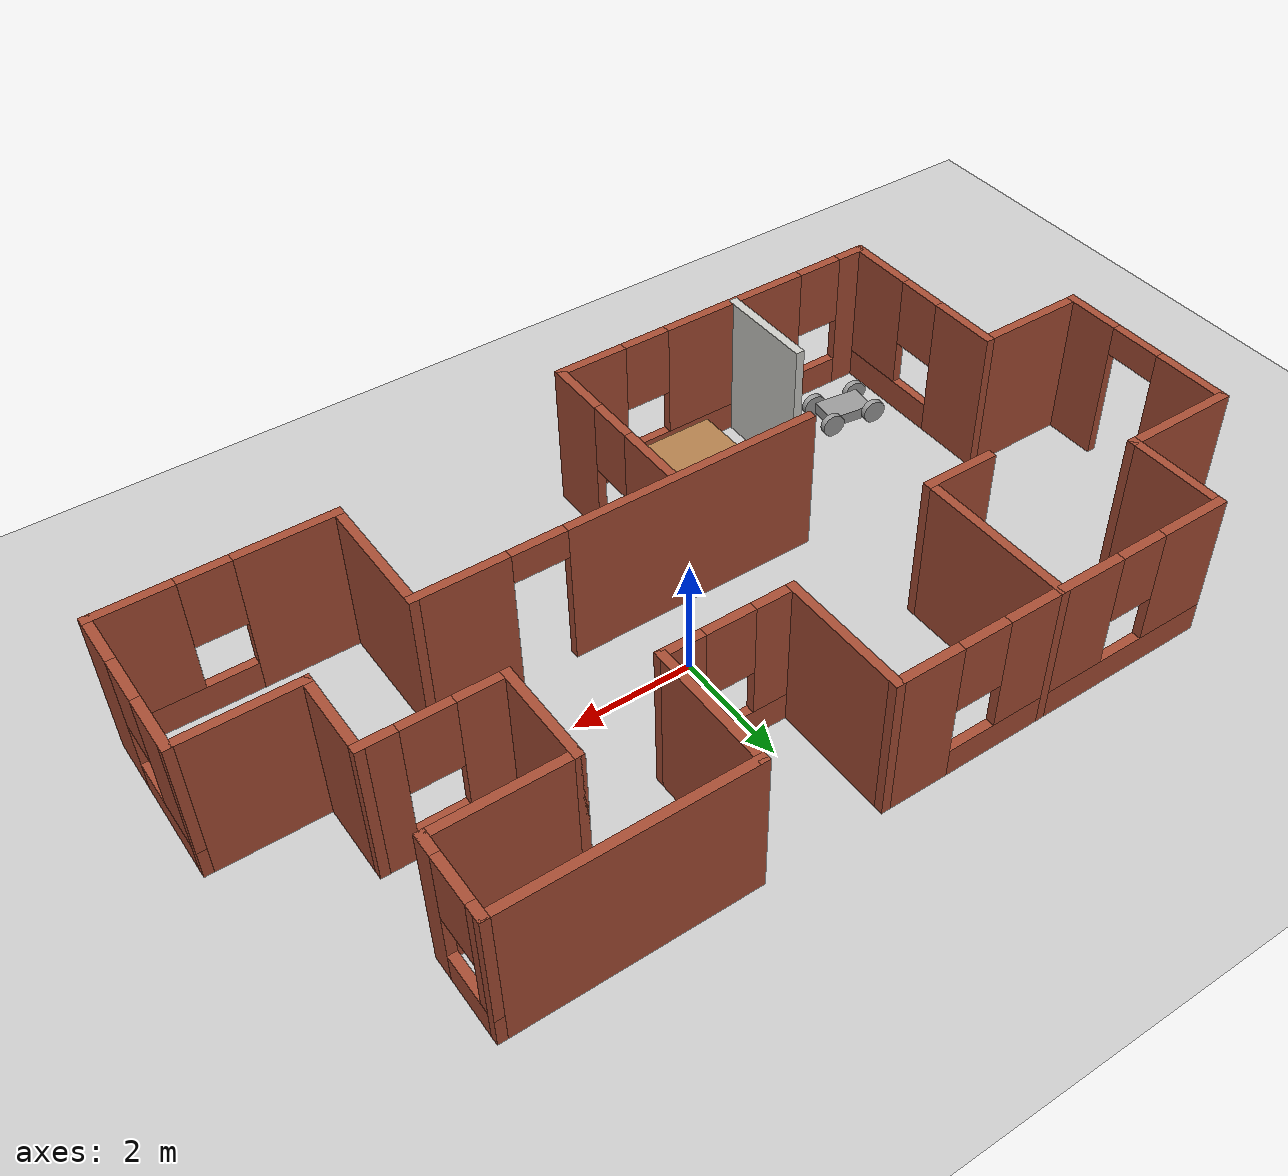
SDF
<sdf version="1.6">
 <world name="default">
  <model name="ground_plane">
   <static>1</static>
   <link name="link">
    <collision name="collision">
     <geometry><plane><normal>0 0 1</normal><size>100 100</size></plane></geometry>
     <surface><friction><ode><mu>100</mu><mu2>50</mu2></ode></friction></surface>
    </collision>
    <visual name="visual">
     <cast_shadows>0</cast_shadows>
     <geometry><plane><normal>0 0 1</normal><size>100 100</size></plane></geometry>
     <material>
      <script><uri>file://media/materials/scripts/gazebo.material</uri><name>Gazebo/Grey</name></script>
     </material>
    </visual>
   </link>
  </model>
  <model name="building">
   <pose>-0.550552 -0.291737 0 0 -0 0</pose>
   <link name="Wall_1">
    <pose>0.85 -0.900213 0 0 -0 0</pose>
    <visual name="Wall_1_Visual_0">
     <pose>-1.22383 0 1.25 0 -0 0</pose>
     <geometry><box><size>4.30235 0.15 2.5</size></box></geometry>
     <material>
      <script><uri>file://media/materials/scripts/gazebo.material</uri><name>Gazebo/Bricks</name></script>
      <ambient>0.996078 0.47451 0.0196078 1</ambient>
     </material>
     <meta><layer>0</layer></meta>
    </visual>
    <collision name="Wall_1_Collision_0">
     <geometry><box><size>4.30235 0.15 2.5</size></box></geometry>
     <pose>-1.22383 0 1.25 0 -0 0</pose>
    </collision>
    <visual name="Wall_1_Visual_1">
     <pose>2.60117 0 1.25 0 -0 0</pose>
     <geometry><box><size>1.54765 0.15 2.5</size></box></geometry>
     <material>
      <script><uri>file://media/materials/scripts/gazebo.material</uri><name>Gazebo/Bricks</name></script>
      <ambient>0.996078 0.47451 0.0196078 1</ambient>
     </material>
     <meta><layer>0</layer></meta>
    </visual>
    <collision name="Wall_1_Collision_1">
     <geometry><box><size>1.54765 0.15 2.5</size></box></geometry>
     <pose>2.60117 0 1.25 0 -0 0</pose>
    </collision>
    <visual name="Wall_1_Visual_2">
     <pose>1.37735 0 2.25 0 -0 0</pose>
     <geometry><box><size>0.9 0.15 0.5</size></box></geometry>
     <material>
      <script><uri>file://media/materials/scripts/gazebo.material</uri><name>Gazebo/Bricks</name></script>
      <ambient>0.996078 0.47451 0.0196078 1</ambient>
     </material>
     <meta><layer>0</layer></meta>
    </visual>
    <collision name="Wall_1_Collision_2">
     <geometry><box><size>0.9 0.15 0.5</size></box></geometry>
     <pose>1.37735 0 2.25 0 -0 0</pose>
    </collision>
   </link>
   <link name="Wall_10">
    <pose>5.9 3.22479 0 0 -0 1.5708</pose>
    <visual name="Wall_10_Visual_0">
     <pose>-0.55649 0 1.25 0 -0 0</pose>
     <geometry><box><size>0.38702 0.15 2.5</size></box></geometry>
     <material>
      <script><uri>file://media/materials/scripts/gazebo.material</uri><name>Gazebo/Bricks</name></script>
      <ambient>0.996078 0.47451 0.0196078 1</ambient>
     </material>
     <meta><layer>0</layer></meta>
    </visual>
    <collision name="Wall_10_Collision_0">
     <geometry><box><size>0.38702 0.15 2.5</size></box></geometry>
     <pose>-0.55649 0 1.25 0 -0 0</pose>
    </collision>
    <visual name="Wall_10_Visual_1">
     <pose>0.19351 0 0.25 0 -0 0</pose>
     <geometry><box><size>1.11298 0.15 0.5</size></box></geometry>
     <material>
      <script><uri>file://media/materials/scripts/gazebo.material</uri><name>Gazebo/Bricks</name></script>
      <ambient>0.996078 0.47451 0.0196078 1</ambient>
     </material>
     <meta><layer>0</layer></meta>
    </visual>
    <collision name="Wall_10_Collision_1">
     <geometry><box><size>1.11298 0.15 0.5</size></box></geometry>
     <pose>0.19351 0 0.25 0 -0 0</pose>
    </collision>
    <visual name="Wall_10_Visual_2">
     <pose>0.59351 0 1.5 0 -0 0</pose>
     <geometry><box><size>0.31298 0.15 2</size></box></geometry>
     <material>
      <script><uri>file://media/materials/scripts/gazebo.material</uri><name>Gazebo/Bricks</name></script>
      <ambient>0.996078 0.47451 0.0196078 1</ambient>
     </material>
     <meta><layer>0</layer></meta>
    </visual>
    <collision name="Wall_10_Collision_2">
     <geometry><box><size>0.31298 0.15 2</size></box></geometry>
     <pose>0.59351 0 1.5 0 -0 0</pose>
    </collision>
    <visual name="Wall_10_Visual_3">
     <pose>0.03702 0 1.9 0 -0 0</pose>
     <geometry><box><size>0.8 0.15 1.2</size></box></geometry>
     <material>
      <script><uri>file://media/materials/scripts/gazebo.material</uri><name>Gazebo/Bricks</name></script>
      <ambient>0.996078 0.47451 0.0196078 1</ambient>
     </material>
     <meta><layer>0</layer></meta>
    </visual>
    <collision name="Wall_10_Collision_3">
     <geometry><box><size>0.8 0.15 1.2</size></box></geometry>
     <pose>0.03702 0 1.9 0 -0 0</pose>
    </collision>
   </link>
   <link name="Wall_11">
    <collision name="Wall_11_Collision">
     <geometry><box><size>4 0.15 2.5</size></box></geometry>
     <pose>0 0 1.25 0 -0 0</pose>
    </collision>
    <visual name="Wall_11_Visual">
     <pose>0 0 1.25 0 -0 0</pose>
     <geometry><box><size>4 0.15 2.5</size></box></geometry>
     <material>
      <script><uri>file://media/materials/scripts/gazebo.material</uri><name>Gazebo/Bricks</name></script>
      <ambient>0.996078 0.47451 0.0196078 1</ambient>
     </material>
     <meta><layer>0</layer></meta>
    </visual>
    <pose>3.975 3.89979 0 0 -0 3.14159</pose>
   </link>
   <link name="Wall_12">
    <collision name="Wall_12_Collision">
     <geometry><box><size>2.25 0.15 2.5</size></box></geometry>
     <pose>0 0 1.25 0 -0 0</pose>
    </collision>
    <visual name="Wall_12_Visual">
     <pose>0 0 1.25 0 -0 0</pose>
     <geometry><box><size>2.25 0.15 2.5</size></box></geometry>
     <material>
      <script><uri>file://media/materials/scripts/gazebo.material</uri><name>Gazebo/Bricks</name></script>
      <ambient>0.996078 0.47451 0.0196078 1</ambient>
     </material>
     <meta><layer>0</layer></meta>
    </visual>
    <pose>2.05 2.84979 0 0 0 -1.5708</pose>
   </link>
   <link name="Wall_13">
    <pose>1 1.79979 0 0 -0 3.14159</pose>
    <visual name="Wall_13_Visual_0">
     <pose>-0.76437 0 1.25 0 -0 0</pose>
     <geometry><box><size>0.72126 0.15 2.5</size></box></geometry>
     <material>
      <script><uri>file://media/materials/scripts/gazebo.material</uri><name>Gazebo/Bricks</name></script>
      <ambient>0.996078 0.47451 0.0196078 1</ambient>
     </material>
     <meta><layer>0</layer></meta>
    </visual>
    <collision name="Wall_13_Collision_0">
     <geometry><box><size>0.72126 0.15 2.5</size></box></geometry>
     <pose>-0.76437 0 1.25 0 -0 0</pose>
    </collision>
    <visual name="Wall_13_Visual_1">
     <pose>0.36063 0 0.25 0 -0 0</pose>
     <geometry><box><size>1.52874 0.15 0.5</size></box></geometry>
     <material>
      <script><uri>file://media/materials/scripts/gazebo.material</uri><name>Gazebo/Bricks</name></script>
      <ambient>0.996078 0.47451 0.0196078 1</ambient>
     </material>
     <meta><layer>0</layer></meta>
    </visual>
    <collision name="Wall_13_Collision_1">
     <geometry><box><size>1.52874 0.15 0.5</size></box></geometry>
     <pose>0.36063 0 0.25 0 -0 0</pose>
    </collision>
    <visual name="Wall_13_Visual_2">
     <pose>0.76063 0 1.5 0 -0 0</pose>
     <geometry><box><size>0.72874 0.15 2</size></box></geometry>
     <material>
      <script><uri>file://media/materials/scripts/gazebo.material</uri><name>Gazebo/Bricks</name></script>
      <ambient>0.996078 0.47451 0.0196078 1</ambient>
     </material>
     <meta><layer>0</layer></meta>
    </visual>
    <collision name="Wall_13_Collision_2">
     <geometry><box><size>0.72874 0.15 2</size></box></geometry>
     <pose>0.76063 0 1.5 0 -0 0</pose>
    </collision>
    <visual name="Wall_13_Visual_3">
     <pose>-0.00374 0 1.9 0 -0 0</pose>
     <geometry><box><size>0.8 0.15 1.2</size></box></geometry>
     <material>
      <script><uri>file://media/materials/scripts/gazebo.material</uri><name>Gazebo/Bricks</name></script>
      <ambient>0.996078 0.47451 0.0196078 1</ambient>
     </material>
     <meta><layer>0</layer></meta>
    </visual>
    <collision name="Wall_13_Collision_3">
     <geometry><box><size>0.8 0.15 1.2</size></box></geometry>
     <pose>-0.00374 0 1.9 0 -0 0</pose>
    </collision>
   </link>
   <link name="Wall_14">
    <collision name="Wall_14_Collision">
     <geometry><box><size>2.25 0.15 2.5</size></box></geometry>
     <pose>0 0 1.25 0 -0 0</pose>
    </collision>
    <visual name="Wall_14_Visual">
     <pose>0 0 1.25 0 -0 0</pose>
     <geometry><box><size>2.25 0.15 2.5</size></box></geometry>
     <material>
      <script><uri>file://media/materials/scripts/gazebo.material</uri><name>Gazebo/Bricks</name></script>
      <ambient>0.996078 0.47451 0.0196078 1</ambient>
     </material>
     <meta><layer>0</layer></meta>
    </visual>
    <pose>-0.05 2.84979 0 0 -0 1.5708</pose>
   </link>
   <link name="Wall_15">
    <pose>-2.975 3.89979 0 0 -0 3.14159</pose>
    <visual name="Wall_15_Visual_0">
     <pose>-2.42586 0 1.25 0 -0 0</pose>
     <geometry><box><size>1.14828 0.15 2.5</size></box></geometry>
     <material>
      <script><uri>file://media/materials/scripts/gazebo.material</uri><name>Gazebo/Bricks</name></script>
      <ambient>0.996078 0.47451 0.0196078 1</ambient>
     </material>
     <meta><layer>0</layer></meta>
    </visual>
    <collision name="Wall_15_Collision_0">
     <geometry><box><size>1.14828 0.15 2.5</size></box></geometry>
     <pose>-2.42586 0 1.25 0 -0 0</pose>
    </collision>
    <visual name="Wall_15_Visual_1">
     <pose>0.57414 0 0.25 0 -0 0</pose>
     <geometry><box><size>4.85172 0.15 0.5</size></box></geometry>
     <material>
      <script><uri>file://media/materials/scripts/gazebo.material</uri><name>Gazebo/Bricks</name></script>
      <ambient>0.996078 0.47451 0.0196078 1</ambient>
     </material>
     <meta><layer>0</layer></meta>
    </visual>
    <collision name="Wall_15_Collision_1">
     <geometry><box><size>4.85172 0.15 0.5</size></box></geometry>
     <pose>0.57414 0 0.25 0 -0 0</pose>
    </collision>
    <visual name="Wall_15_Visual_2">
     <pose>-0.02861 0 1.5 0 -0 0</pose>
     <geometry><box><size>2.04622 0.15 2</size></box></geometry>
     <material>
      <script><uri>file://media/materials/scripts/gazebo.material</uri><name>Gazebo/Bricks</name></script>
      <ambient>0.996078 0.47451 0.0196078 1</ambient>
     </material>
     <meta><layer>0</layer></meta>
    </visual>
    <collision name="Wall_15_Collision_2">
     <geometry><box><size>2.04622 0.15 2</size></box></geometry>
     <pose>-0.02861 0 1.5 0 -0 0</pose>
    </collision>
    <visual name="Wall_15_Visual_3">
     <pose>2.39725 0 1.5 0 -0 0</pose>
     <geometry><box><size>1.2055 0.15 2</size></box></geometry>
     <material>
      <script><uri>file://media/materials/scripts/gazebo.material</uri><name>Gazebo/Bricks</name></script>
      <ambient>0.996078 0.47451 0.0196078 1</ambient>
     </material>
     <meta><layer>0</layer></meta>
    </visual>
    <collision name="Wall_15_Collision_3">
     <geometry><box><size>1.2055 0.15 2</size></box></geometry>
     <pose>2.39725 0 1.5 0 -0 0</pose>
    </collision>
    <visual name="Wall_15_Visual_4">
     <pose>-1.45172 0 1.9 0 -0 0</pose>
     <geometry><box><size>0.8 0.15 1.2</size></box></geometry>
     <material>
      <script><uri>file://media/materials/scripts/gazebo.material</uri><name>Gazebo/Bricks</name></script>
      <ambient>0.996078 0.47451 0.0196078 1</ambient>
     </material>
     <meta><layer>0</layer></meta>
    </visual>
    <collision name="Wall_15_Collision_4">
     <geometry><box><size>0.8 0.15 1.2</size></box></geometry>
     <pose>-1.45172 0 1.9 0 -0 0</pose>
    </collision>
    <visual name="Wall_15_Visual_5">
     <pose>1.3945 0 1.9 0 -0 0</pose>
     <geometry><box><size>0.8 0.15 1.2</size></box></geometry>
     <material>
      <script><uri>file://media/materials/scripts/gazebo.material</uri><name>Gazebo/Bricks</name></script>
      <ambient>0.996078 0.47451 0.0196078 1</ambient>
     </material>
     <meta><layer>0</layer></meta>
    </visual>
    <collision name="Wall_15_Collision_5">
     <geometry><box><size>0.8 0.15 1.2</size></box></geometry>
     <pose>1.3945 0 1.9 0 -0 0</pose>
    </collision>
   </link>
   <link name="Wall_16">
    <collision name="Wall_16_Collision">
     <geometry><box><size>1.75 0.15 2.5</size></box></geometry>
     <pose>0 0 1.25 0 -0 0</pose>
    </collision>
    <visual name="Wall_16_Visual">
     <pose>0 0 1.25 0 -0 0</pose>
     <geometry><box><size>1.75 0.15 2.5</size></box></geometry>
     <material>
      <script><uri>file://media/materials/scripts/gazebo.material</uri><name>Gazebo/Bricks</name></script>
      <ambient>0.996078 0.47451 0.0196078 1</ambient>
     </material>
     <meta><layer>0</layer></meta>
    </visual>
    <pose>-5.9 3.09979 0 0 0 -1.5708</pose>
   </link>
   <link name="Wall_17">
    <collision name="Wall_17_Collision">
     <geometry><box><size>2 0.15 2.5</size></box></geometry>
     <pose>0 0 1.25 0 -0 0</pose>
    </collision>
    <visual name="Wall_17_Visual">
     <pose>0 0 1.25 0 -0 0</pose>
     <geometry><box><size>2 0.15 2.5</size></box></geometry>
     <material>
      <script><uri>file://media/materials/scripts/gazebo.material</uri><name>Gazebo/Bricks</name></script>
      <ambient>0.996078 0.47451 0.0196078 1</ambient>
     </material>
     <meta><layer>0</layer></meta>
    </visual>
    <pose>-6.825 2.29979 0 0 -0 3.14159</pose>
   </link>
   <link name="Wall_18">
    <pose>-7.75 0.749787 0 0 0 -1.5708</pose>
    <visual name="Wall_18_Visual_0">
     <pose>-0.9635 0 1.25 0 -0 0</pose>
     <geometry><box><size>1.323 0.15 2.5</size></box></geometry>
     <material>
      <script><uri>file://media/materials/scripts/gazebo.material</uri><name>Gazebo/Bricks</name></script>
      <ambient>0.996078 0.47451 0.0196078 1</ambient>
     </material>
     <meta><layer>0</layer></meta>
    </visual>
    <collision name="Wall_18_Collision_0">
     <geometry><box><size>1.323 0.15 2.5</size></box></geometry>
     <pose>-0.9635 0 1.25 0 -0 0</pose>
    </collision>
    <visual name="Wall_18_Visual_1">
     <pose>1.1115 0 1.25 0 -0 0</pose>
     <geometry><box><size>1.027 0.15 2.5</size></box></geometry>
     <material>
      <script><uri>file://media/materials/scripts/gazebo.material</uri><name>Gazebo/Bricks</name></script>
      <ambient>0.996078 0.47451 0.0196078 1</ambient>
     </material>
     <meta><layer>0</layer></meta>
    </visual>
    <collision name="Wall_18_Collision_1">
     <geometry><box><size>1.027 0.15 2.5</size></box></geometry>
     <pose>1.1115 0 1.25 0 -0 0</pose>
    </collision>
    <visual name="Wall_18_Visual_2">
     <pose>0.147999 0 2.25 0 -0 0</pose>
     <geometry><box><size>0.9 0.15 0.5</size></box></geometry>
     <material>
      <script><uri>file://media/materials/scripts/gazebo.material</uri><name>Gazebo/Bricks</name></script>
      <ambient>0.996078 0.47451 0.0196078 1</ambient>
     </material>
     <meta><layer>0</layer></meta>
    </visual>
    <collision name="Wall_18_Collision_2">
     <geometry><box><size>0.9 0.15 0.5</size></box></geometry>
     <pose>0.147999 0 2.25 0 -0 0</pose>
    </collision>
   </link>
   <link name="Wall_19">
    <collision name="Wall_19_Collision">
     <geometry><box><size>2 0.15 2.5</size></box></geometry>
     <pose>0 0 1.25 0 -0 0</pose>
    </collision>
    <visual name="Wall_19_Visual">
     <pose>0 0 1.25 0 -0 0</pose>
     <geometry><box><size>2 0.15 2.5</size></box></geometry>
     <material>
      <script><uri>file://media/materials/scripts/gazebo.material</uri><name>Gazebo/Bricks</name></script>
      <ambient>0.996078 0.47451 0.0196078 1</ambient>
     </material>
     <meta><layer>0</layer></meta>
    </visual>
    <pose>-6.825 -0.800213 0 0 -0 0</pose>
   </link>
   <link name="Wall_2">
    <collision name="Wall_2_Collision">
     <geometry><box><size>2.25 0.15 2.5</size></box></geometry>
     <pose>0 0 1.25 0 -0 0</pose>
    </collision>
    <visual name="Wall_2_Visual">
     <pose>0 0 1.25 0 -0 0</pose>
     <geometry><box><size>2.25 0.15 2.5</size></box></geometry>
     <material>
      <script><uri>file://media/materials/scripts/gazebo.material</uri><name>Gazebo/Bricks</name></script>
      <ambient>0.996078 0.47451 0.0196078 1</ambient>
     </material>
     <meta><layer>0</layer></meta>
    </visual>
    <pose>4.15 -1.95021 0 0 0 -1.5708</pose>
   </link>
   <link name="Wall_20">
    <pose>-5.9 -2.35021 0 0 0 -1.5708</pose>
    <visual name="Wall_20_Visual_0">
     <pose>-1.02549 0 1.25 0 -0 0</pose>
     <geometry><box><size>1.19902 0.15 2.5</size></box></geometry>
     <material>
      <script><uri>file://media/materials/scripts/gazebo.material</uri><name>Gazebo/Bricks</name></script>
      <ambient>0.996078 0.47451 0.0196078 1</ambient>
     </material>
     <meta><layer>0</layer></meta>
    </visual>
    <collision name="Wall_20_Collision_0">
     <geometry><box><size>1.19902 0.15 2.5</size></box></geometry>
     <pose>-1.02549 0 1.25 0 -0 0</pose>
    </collision>
    <visual name="Wall_20_Visual_1">
     <pose>0.599511 0 0.25 0 -0 0</pose>
     <geometry><box><size>2.05098 0.15 0.5</size></box></geometry>
     <material>
      <script><uri>file://media/materials/scripts/gazebo.material</uri><name>Gazebo/Bricks</name></script>
      <ambient>0.996078 0.47451 0.0196078 1</ambient>
     </material>
     <meta><layer>0</layer></meta>
    </visual>
    <collision name="Wall_20_Collision_1">
     <geometry><box><size>2.05098 0.15 0.5</size></box></geometry>
     <pose>0.599511 0 0.25 0 -0 0</pose>
    </collision>
    <visual name="Wall_20_Visual_2">
     <pose>0.999511 0 1.5 0 -0 0</pose>
     <geometry><box><size>1.25098 0.15 2</size></box></geometry>
     <material>
      <script><uri>file://media/materials/scripts/gazebo.material</uri><name>Gazebo/Bricks</name></script>
      <ambient>0.996078 0.47451 0.0196078 1</ambient>
     </material>
     <meta><layer>0</layer></meta>
    </visual>
    <collision name="Wall_20_Collision_2">
     <geometry><box><size>1.25098 0.15 2</size></box></geometry>
     <pose>0.999511 0 1.5 0 -0 0</pose>
    </collision>
    <visual name="Wall_20_Visual_3">
     <pose>-0.025979 0 1.9 0 -0 0</pose>
     <geometry><box><size>0.8 0.15 1.2</size></box></geometry>
     <material>
      <script><uri>file://media/materials/scripts/gazebo.material</uri><name>Gazebo/Bricks</name></script>
      <ambient>0.996078 0.47451 0.0196078 1</ambient>
     </material>
     <meta><layer>0</layer></meta>
    </visual>
    <collision name="Wall_20_Collision_3">
     <geometry><box><size>0.8 0.15 1.2</size></box></geometry>
     <pose>-0.025979 0 1.9 0 -0 0</pose>
    </collision>
   </link>
   <link name="Wall_21">
    <pose>-2.975 -3.90021 0 0 -0 0</pose>
    <visual name="Wall_21_Visual_0">
     <pose>-2.71645 0 1.25 0 -0 0</pose>
     <geometry><box><size>0.567095 0.15 2.5</size></box></geometry>
     <material>
      <script><uri>file://media/materials/scripts/gazebo.material</uri><name>Gazebo/Bricks</name></script>
      <ambient>0.996078 0.47451 0.0196078 1</ambient>
     </material>
     <meta><layer>0</layer></meta>
    </visual>
    <collision name="Wall_21_Collision_0">
     <geometry><box><size>0.567095 0.15 2.5</size></box></geometry>
     <pose>-2.71645 0 1.25 0 -0 0</pose>
    </collision>
    <visual name="Wall_21_Visual_1">
     <pose>0.283547 0 0.25 0 -0 0</pose>
     <geometry><box><size>5.4329 0.15 0.5</size></box></geometry>
     <material>
      <script><uri>file://media/materials/scripts/gazebo.material</uri><name>Gazebo/Bricks</name></script>
      <ambient>0.996078 0.47451 0.0196078 1</ambient>
     </material>
     <meta><layer>0</layer></meta>
    </visual>
    <collision name="Wall_21_Collision_1">
     <geometry><box><size>5.4329 0.15 0.5</size></box></geometry>
     <pose>0.283547 0 0.25 0 -0 0</pose>
    </collision>
    <visual name="Wall_21_Visual_2">
     <pose>-0.317192 0 1.5 0 -0 0</pose>
     <geometry><box><size>2.63143 0.15 2</size></box></geometry>
     <material>
      <script><uri>file://media/materials/scripts/gazebo.material</uri><name>Gazebo/Bricks</name></script>
      <ambient>0.996078 0.47451 0.0196078 1</ambient>
     </material>
     <meta><layer>0</layer></meta>
    </visual>
    <collision name="Wall_21_Collision_2">
     <geometry><box><size>2.63143 0.15 2</size></box></geometry>
     <pose>-0.317192 0 1.5 0 -0 0</pose>
    </collision>
    <visual name="Wall_21_Visual_3">
     <pose>2.39926 0 1.5 0 -0 0</pose>
     <geometry><box><size>1.20148 0.15 2</size></box></geometry>
     <material>
      <script><uri>file://media/materials/scripts/gazebo.material</uri><name>Gazebo/Bricks</name></script>
      <ambient>0.996078 0.47451 0.0196078 1</ambient>
     </material>
     <meta><layer>0</layer></meta>
    </visual>
    <collision name="Wall_21_Collision_3">
     <geometry><box><size>1.20148 0.15 2</size></box></geometry>
     <pose>2.39926 0 1.5 0 -0 0</pose>
    </collision>
    <visual name="Wall_21_Visual_4">
     <pose>-2.0329 0 1.9 0 -0 0</pose>
     <geometry><box><size>0.8 0.15 1.2</size></box></geometry>
     <material>
      <script><uri>file://media/materials/scripts/gazebo.material</uri><name>Gazebo/Bricks</name></script>
      <ambient>0.996078 0.47451 0.0196078 1</ambient>
     </material>
     <meta><layer>0</layer></meta>
    </visual>
    <collision name="Wall_21_Collision_4">
     <geometry><box><size>0.8 0.15 1.2</size></box></geometry>
     <pose>-2.0329 0 1.9 0 -0 0</pose>
    </collision>
    <visual name="Wall_21_Visual_5">
     <pose>1.39852 0 1.9 0 -0 0</pose>
     <geometry><box><size>0.8 0.15 1.2</size></box></geometry>
     <material>
      <script><uri>file://media/materials/scripts/gazebo.material</uri><name>Gazebo/Bricks</name></script>
      <ambient>0.996078 0.47451 0.0196078 1</ambient>
     </material>
     <meta><layer>0</layer></meta>
    </visual>
    <collision name="Wall_21_Collision_5">
     <geometry><box><size>0.8 0.15 1.2</size></box></geometry>
     <pose>1.39852 0 1.9 0 -0 0</pose>
    </collision>
   </link>
   <link name="Wall_22">
    <pose>-0.05 -2.47521 0 0 -0 1.5708</pose>
    <visual name="Wall_22_Visual_0">
     <pose>-0.954311 0 1.25 0 -0 0</pose>
     <geometry><box><size>1.09138 0.15 2.5</size></box></geometry>
     <material>
      <script><uri>file://media/materials/scripts/gazebo.material</uri><name>Gazebo/Bricks</name></script>
      <ambient>0.996078 0.47451 0.0196078 1</ambient>
     </material>
     <meta><layer>0</layer></meta>
    </visual>
    <collision name="Wall_22_Collision_0">
     <geometry><box><size>1.09138 0.15 2.5</size></box></geometry>
     <pose>-0.954311 0 1.25 0 -0 0</pose>
    </collision>
    <visual name="Wall_22_Visual_1">
     <pose>0.545689 0 0.25 0 -0 0</pose>
     <geometry><box><size>1.90862 0.15 0.5</size></box></geometry>
     <material>
      <script><uri>file://media/materials/scripts/gazebo.material</uri><name>Gazebo/Bricks</name></script>
      <ambient>0.996078 0.47451 0.0196078 1</ambient>
     </material>
     <meta><layer>0</layer></meta>
    </visual>
    <collision name="Wall_22_Collision_1">
     <geometry><box><size>1.90862 0.15 0.5</size></box></geometry>
     <pose>0.545689 0 0.25 0 -0 0</pose>
    </collision>
    <visual name="Wall_22_Visual_2">
     <pose>0.945689 0 1.5 0 -0 0</pose>
     <geometry><box><size>1.10862 0.15 2</size></box></geometry>
     <material>
      <script><uri>file://media/materials/scripts/gazebo.material</uri><name>Gazebo/Bricks</name></script>
      <ambient>0.996078 0.47451 0.0196078 1</ambient>
     </material>
     <meta><layer>0</layer></meta>
    </visual>
    <collision name="Wall_22_Collision_2">
     <geometry><box><size>1.10862 0.15 2</size></box></geometry>
     <pose>0.945689 0 1.5 0 -0 0</pose>
    </collision>
    <visual name="Wall_22_Visual_3">
     <pose>-0.008622 0 1.9 0 -0 0</pose>
     <geometry><box><size>0.8 0.15 1.2</size></box></geometry>
     <material>
      <script><uri>file://media/materials/scripts/gazebo.material</uri><name>Gazebo/Bricks</name></script>
      <ambient>0.996078 0.47451 0.0196078 1</ambient>
     </material>
     <meta><layer>0</layer></meta>
    </visual>
    <collision name="Wall_22_Collision_3">
     <geometry><box><size>0.8 0.15 1.2</size></box></geometry>
     <pose>-0.008622 0 1.9 0 -0 0</pose>
    </collision>
   </link>
   <link name="Wall_25">
    <collision name="Wall_25_Collision">
     <geometry><box><size>2.75 0.15 2.5</size></box></geometry>
     <pose>0 0 1.25 0 -0 0</pose>
    </collision>
    <visual name="Wall_25_Visual">
     <pose>0 0 1.25 0 -0 0</pose>
     <geometry><box><size>2.75 0.15 2.5</size></box></geometry>
     <material>
      <script><uri>file://media/materials/scripts/gazebo.material</uri><name>Gazebo/Bricks</name></script>
      <ambient>0.996078 0.47451 0.0196078 1</ambient>
     </material>
     <meta><layer>0</layer></meta>
    </visual>
    <pose>-2.87989 2.60021 0 0 0 -1.5708</pose>
   </link>
   <link name="Wall_26">
    <collision name="Wall_26_Collision">
     <geometry><box><size>1.25 0.15 2.5</size></box></geometry>
     <pose>0 0 1.25 0 -0 0</pose>
    </collision>
    <visual name="Wall_26_Visual">
     <pose>0 0 1.25 0 -0 0</pose>
     <geometry><box><size>1.25 0.15 2.5</size></box></geometry>
     <material>
      <script><uri>file://media/materials/scripts/gazebo.material</uri><name>Gazebo/Bricks</name></script>
      <ambient>0.996078 0.47451 0.0196078 1</ambient>
     </material>
     <meta><layer>0</layer></meta>
    </visual>
    <pose>-3.42989 1.30021 0 0 -0 3.14159</pose>
   </link>
   <link name="Wall_28">
    <collision name="Wall_28_Collision">
     <geometry><box><size>1.75 0.15 2.5</size></box></geometry>
     <pose>0 0 1.25 0 -0 0</pose>
    </collision>
    <visual name="Wall_28_Visual">
     <pose>0 0 1.25 0 -0 0</pose>
     <geometry><box><size>1.75 0.15 2.5</size></box></geometry>
     <material>
      <script><uri>file://media/materials/scripts/gazebo.material</uri><name>Gazebo/CeilingTiled</name></script>
      <ambient>1 0.764706 0.305882 1</ambient>
     </material>
     <meta><layer>0</layer></meta>
    </visual>
    <pose>-3.30549 -3.06704 0 0 -0 1.5708</pose>
   </link>
   <link name="Wall_3">
    <pose>5.95 -3.00021 0 0 -0 0</pose>
    <visual name="Wall_3_Visual_0">
     <pose>-1.04371 0 1.25 0 -0 0</pose>
     <geometry><box><size>1.66258 0.15 2.5</size></box></geometry>
     <material>
      <script><uri>file://media/materials/scripts/gazebo.material</uri><name>Gazebo/Bricks</name></script>
      <ambient>0.996078 0.47451 0.0196078 1</ambient>
     </material>
     <meta><layer>0</layer></meta>
    </visual>
    <collision name="Wall_3_Collision_0">
     <geometry><box><size>1.66258 0.15 2.5</size></box></geometry>
     <pose>-1.04371 0 1.25 0 -0 0</pose>
    </collision>
    <visual name="Wall_3_Visual_1">
     <pose>0.831289 0 0.25 0 -0 0</pose>
     <geometry><box><size>2.08742 0.15 0.5</size></box></geometry>
     <material>
      <script><uri>file://media/materials/scripts/gazebo.material</uri><name>Gazebo/Bricks</name></script>
      <ambient>0.996078 0.47451 0.0196078 1</ambient>
     </material>
     <meta><layer>0</layer></meta>
    </visual>
    <collision name="Wall_3_Collision_1">
     <geometry><box><size>2.08742 0.15 0.5</size></box></geometry>
     <pose>0.831289 0 0.25 0 -0 0</pose>
    </collision>
    <visual name="Wall_3_Visual_2">
     <pose>1.23129 0 1.5 0 -0 0</pose>
     <geometry><box><size>1.28742 0.15 2</size></box></geometry>
     <material>
      <script><uri>file://media/materials/scripts/gazebo.material</uri><name>Gazebo/Bricks</name></script>
      <ambient>0.996078 0.47451 0.0196078 1</ambient>
     </material>
     <meta><layer>0</layer></meta>
    </visual>
    <collision name="Wall_3_Collision_2">
     <geometry><box><size>1.28742 0.15 2</size></box></geometry>
     <pose>1.23129 0 1.5 0 -0 0</pose>
    </collision>
    <visual name="Wall_3_Visual_3">
     <pose>0.187578 0 1.9 0 -0 0</pose>
     <geometry><box><size>0.8 0.15 1.2</size></box></geometry>
     <material>
      <script><uri>file://media/materials/scripts/gazebo.material</uri><name>Gazebo/Bricks</name></script>
      <ambient>0.996078 0.47451 0.0196078 1</ambient>
     </material>
     <meta><layer>0</layer></meta>
    </visual>
    <collision name="Wall_3_Collision_3">
     <geometry><box><size>0.8 0.15 1.2</size></box></geometry>
     <pose>0.187578 0 1.9 0 -0 0</pose>
    </collision>
   </link>
   <link name="Wall_4">
    <pose>7.75 -1.70021 0 0 -0 1.5708</pose>
    <visual name="Wall_4_Visual_0">
     <pose>-0.906908 0 1.25 0 -0 0</pose>
     <geometry><box><size>0.936183 0.15 2.5</size></box></geometry>
     <material>
      <script><uri>file://media/materials/scripts/gazebo.material</uri><name>Gazebo/Bricks</name></script>
      <ambient>0.996078 0.47451 0.0196078 1</ambient>
     </material>
     <meta><layer>0</layer></meta>
    </visual>
    <collision name="Wall_4_Collision_0">
     <geometry><box><size>0.936183 0.15 2.5</size></box></geometry>
     <pose>-0.906908 0 1.25 0 -0 0</pose>
    </collision>
    <visual name="Wall_4_Visual_1">
     <pose>0.468092 0 0.25 0 -0 0</pose>
     <geometry><box><size>1.81382 0.15 0.5</size></box></geometry>
     <material>
      <script><uri>file://media/materials/scripts/gazebo.material</uri><name>Gazebo/Bricks</name></script>
      <ambient>0.996078 0.47451 0.0196078 1</ambient>
     </material>
     <meta><layer>0</layer></meta>
    </visual>
    <collision name="Wall_4_Collision_1">
     <geometry><box><size>1.81382 0.15 0.5</size></box></geometry>
     <pose>0.468092 0 0.25 0 -0 0</pose>
    </collision>
    <visual name="Wall_4_Visual_2">
     <pose>0.868092 0 1.5 0 -0 0</pose>
     <geometry><box><size>1.01382 0.15 2</size></box></geometry>
     <material>
      <script><uri>file://media/materials/scripts/gazebo.material</uri><name>Gazebo/Bricks</name></script>
      <ambient>0.996078 0.47451 0.0196078 1</ambient>
     </material>
     <meta><layer>0</layer></meta>
    </visual>
    <collision name="Wall_4_Collision_2">
     <geometry><box><size>1.01382 0.15 2</size></box></geometry>
     <pose>0.868092 0 1.5 0 -0 0</pose>
    </collision>
    <visual name="Wall_4_Visual_3">
     <pose>-0.038817 0 1.9 0 -0 0</pose>
     <geometry><box><size>0.8 0.15 1.2</size></box></geometry>
     <material>
      <script><uri>file://media/materials/scripts/gazebo.material</uri><name>Gazebo/Bricks</name></script>
      <ambient>0.996078 0.47451 0.0196078 1</ambient>
     </material>
     <meta><layer>0</layer></meta>
    </visual>
    <collision name="Wall_4_Collision_3">
     <geometry><box><size>0.8 0.15 1.2</size></box></geometry>
     <pose>-0.038817 0 1.9 0 -0 0</pose>
    </collision>
   </link>
   <link name="Wall_5">
    <collision name="Wall_5_Collision">
     <geometry><box><size>2 0.15 2.5</size></box></geometry>
     <pose>0 0 1.25 0 -0 0</pose>
    </collision>
    <visual name="Wall_5_Visual">
     <pose>0 0 1.25 0 -0 0</pose>
     <geometry><box><size>2 0.15 2.5</size></box></geometry>
     <material>
      <script><uri>file://media/materials/scripts/gazebo.material</uri><name>Gazebo/Bricks</name></script>
      <ambient>0.996078 0.47451 0.0196078 1</ambient>
     </material>
     <meta><layer>0</layer></meta>
    </visual>
    <pose>6.825 -0.400213 0 0 -0 3.14159</pose>
   </link>
   <link name="Wall_6">
    <collision name="Wall_6_Collision">
     <geometry><box><size>1.5 0.15 2.5</size></box></geometry>
     <pose>0 0 1.25 0 -0 0</pose>
    </collision>
    <visual name="Wall_6_Visual">
     <pose>0 0 1.25 0 -0 0</pose>
     <geometry><box><size>1.5 0.15 2.5</size></box></geometry>
     <material>
      <script><uri>file://media/materials/scripts/gazebo.material</uri><name>Gazebo/Bricks</name></script>
      <ambient>0.996078 0.47451 0.0196078 1</ambient>
     </material>
     <meta><layer>0</layer></meta>
    </visual>
    <pose>5.9 0.274787 0 0 -0 1.5708</pose>
   </link>
   <link name="Wall_7">
    <pose>4.85 0.949787 0 0 -0 3.14159</pose>
    <visual name="Wall_7_Visual_0">
     <pose>-0.821085 0 1.25 0 -0 0</pose>
     <geometry><box><size>0.607831 0.15 2.5</size></box></geometry>
     <material>
      <script><uri>file://media/materials/scripts/gazebo.material</uri><name>Gazebo/Bricks</name></script>
      <ambient>0.996078 0.47451 0.0196078 1</ambient>
     </material>
     <meta><layer>0</layer></meta>
    </visual>
    <collision name="Wall_7_Collision_0">
     <geometry><box><size>0.607831 0.15 2.5</size></box></geometry>
     <pose>-0.821085 0 1.25 0 -0 0</pose>
    </collision>
    <visual name="Wall_7_Visual_1">
     <pose>0.303915 0 0.25 0 -0 0</pose>
     <geometry><box><size>1.64217 0.15 0.5</size></box></geometry>
     <material>
      <script><uri>file://media/materials/scripts/gazebo.material</uri><name>Gazebo/Bricks</name></script>
      <ambient>0.996078 0.47451 0.0196078 1</ambient>
     </material>
     <meta><layer>0</layer></meta>
    </visual>
    <collision name="Wall_7_Collision_1">
     <geometry><box><size>1.64217 0.15 0.5</size></box></geometry>
     <pose>0.303915 0 0.25 0 -0 0</pose>
    </collision>
    <visual name="Wall_7_Visual_2">
     <pose>0.703915 0 1.5 0 -0 0</pose>
     <geometry><box><size>0.842169 0.15 2</size></box></geometry>
     <material>
      <script><uri>file://media/materials/scripts/gazebo.material</uri><name>Gazebo/Bricks</name></script>
      <ambient>0.996078 0.47451 0.0196078 1</ambient>
     </material>
     <meta><layer>0</layer></meta>
    </visual>
    <collision name="Wall_7_Collision_2">
     <geometry><box><size>0.842169 0.15 2</size></box></geometry>
     <pose>0.703915 0 1.5 0 -0 0</pose>
    </collision>
    <visual name="Wall_7_Visual_3">
     <pose>-0.117169 0 1.9 0 -0 0</pose>
     <geometry><box><size>0.8 0.15 1.2</size></box></geometry>
     <material>
      <script><uri>file://media/materials/scripts/gazebo.material</uri><name>Gazebo/Bricks</name></script>
      <ambient>0.996078 0.47451 0.0196078 1</ambient>
     </material>
     <meta><layer>0</layer></meta>
    </visual>
    <collision name="Wall_7_Collision_3">
     <geometry><box><size>0.8 0.15 1.2</size></box></geometry>
     <pose>-0.117169 0 1.9 0 -0 0</pose>
    </collision>
   </link>
   <link name="Wall_8">
    <collision name="Wall_8_Collision">
     <geometry><box><size>1.75 0.15 2.5</size></box></geometry>
     <pose>0 0 1.25 0 -0 0</pose>
    </collision>
    <visual name="Wall_8_Visual">
     <pose>0 0 1.25 0 -0 0</pose>
     <geometry><box><size>1.75 0.15 2.5</size></box></geometry>
     <material>
      <script><uri>file://media/materials/scripts/gazebo.material</uri><name>Gazebo/Bricks</name></script>
      <ambient>0.996078 0.47451 0.0196078 1</ambient>
     </material>
     <meta><layer>0</layer></meta>
    </visual>
    <pose>3.8 1.74979 0 0 -0 1.5708</pose>
   </link>
   <link name="Wall_9">
    <collision name="Wall_9_Collision">
     <geometry><box><size>2.25 0.15 2.5</size></box></geometry>
     <pose>0 0 1.25 0 -0 0</pose>
    </collision>
    <visual name="Wall_9_Visual">
     <pose>0 0 1.25 0 -0 0</pose>
     <geometry><box><size>2.25 0.15 2.5</size></box></geometry>
     <material>
      <script><uri>file://media/materials/scripts/gazebo.material</uri><name>Gazebo/Bricks</name></script>
      <ambient>0.996078 0.47451 0.0196078 1</ambient>
     </material>
     <meta><layer>0</layer></meta>
    </visual>
    <pose>4.85 2.54979 0 0 -0 0</pose>
   </link>
   <static>1</static>
  </model>
  <model name="robot">
   <link name="link_0">
    <pose>0 -0 -0.015999 0 -0 0</pose>
    <inertial>
     <mass>1</mass>
     <inertia>
      <ixx>0.166667</ixx>
      <ixy>0</ixy>
      <ixz>0</ixz>
      <iyy>0.166667</iyy>
      <iyz>0</iyz>
      <izz>0.166667</izz>
     </inertia>
    </inertial>
    <visual name="visual">
     <geometry><box><size>0.8 0.5 0.2</size></box></geometry>
     <material>
      <lighting>1</lighting>
      <script><uri>file://media/materials/scripts/gazebo.material</uri><name>Gazebo/Grey</name></script>
      <shader type="pixel"><normal_map>__default__</normal_map></shader>
      <ambient>0.3 0.3 0.3 1</ambient>
      <diffuse>0.7 0.7 0.7 1</diffuse>
      <specular>0.01 0.01 0.01 1</specular>
      <emissive>0 0 0 1</emissive>
     </material>
    </visual>
    <collision name="collision">
     <geometry><box><size>0.8 0.5 0.2</size></box></geometry>
     <surface>
      <friction>
       <ode><mu>1</mu><mu2>1</mu2><fdir1>0 0 0</fdir1><slip1>0</slip1><slip2>0</slip2></ode>
       <torsional>
        <coefficient>1</coefficient>
        <patch_radius>0</patch_radius>
        <surface_radius>0</surface_radius>
        <use_patch_radius>1</use_patch_radius>
        <ode><slip>0</slip></ode>
       </torsional>
      </friction>
      <bounce><restitution_coefficient>0</restitution_coefficient><threshold>1e+06</threshold></bounce>
      <contact>
       <collide_without_contact>0</collide_without_contact>
       <collide_without_contact_bitmask>1</collide_without_contact_bitmask>
       <collide_bitmask>1</collide_bitmask>
       <ode>
        <soft_cfm>0</soft_cfm>
        <soft_erp>0.2</soft_erp>
        <kp>1e+13</kp>
        <kd>1</kd>
        <max_vel>0.01</max_vel>
        <min_depth>0</min_depth>
       </ode>
       <bullet>
        <split_impulse>1</split_impulse>
        <split_impulse_penetration_threshold>-0.01</split_impulse_penetration_threshold>
        <soft_cfm>0</soft_cfm>
        <soft_erp>0.2</soft_erp>
        <kp>1e+13</kp>
        <kd>1</kd>
       </bullet>
      </contact>
     </surface>
    </collision>
   </link>
   <link name="link_1">
    <pose>-0.4 -0.300019 0.003997 1.5707 -0 0</pose>
    <inertial>
     <mass>1</mass>
     <inertia><ixx>0.145833</ixx><ixy>0</ixy><ixz>0</ixz><iyy>0.145833</iyy><iyz>0</iyz><izz>0.125</izz></inertia>
    </inertial>
    <visual name="visual">
     <geometry><cylinder><radius>0.2</radius><length>0.1</length></cylinder></geometry>
     <material>
      <lighting>1</lighting>
      <script><uri>file://media/materials/scripts/gazebo.material</uri><name>Gazebo/Grey</name></script>
      <shader type="pixel"><normal_map>__default__</normal_map></shader>
      <ambient>0.3 0.3 0.3 1</ambient>
      <diffuse>0.7 0.7 0.7 1</diffuse>
      <specular>0.01 0.01 0.01 1</specular>
      <emissive>0 0 0 1</emissive>
     </material>
    </visual>
    <collision name="collision">
     <geometry><cylinder><radius>0.2</radius><length>0.1</length></cylinder></geometry>
     <surface>
      <friction>
       <ode><mu>1</mu><mu2>1</mu2><fdir1>0 0 0</fdir1><slip1>0</slip1><slip2>0</slip2></ode>
       <torsional>
        <coefficient>1</coefficient>
        <patch_radius>0</patch_radius>
        <surface_radius>0</surface_radius>
        <use_patch_radius>1</use_patch_radius>
        <ode><slip>0</slip></ode>
       </torsional>
      </friction>
      <bounce><restitution_coefficient>0</restitution_coefficient><threshold>1e+06</threshold></bounce>
      <contact>
       <collide_without_contact>0</collide_without_contact>
       <collide_without_contact_bitmask>1</collide_without_contact_bitmask>
       <collide_bitmask>1</collide_bitmask>
       <ode>
        <soft_cfm>0</soft_cfm>
        <soft_erp>0.2</soft_erp>
        <kp>1e+13</kp>
        <kd>1</kd>
        <max_vel>0.01</max_vel>
        <min_depth>0</min_depth>
       </ode>
       <bullet>
        <split_impulse>1</split_impulse>
        <split_impulse_penetration_threshold>-0.01</split_impulse_penetration_threshold>
        <soft_cfm>0</soft_cfm>
        <soft_erp>0.2</soft_erp>
        <kp>1e+13</kp>
        <kd>1</kd>
       </bullet>
      </contact>
     </surface>
    </collision>
   </link>
   <link name="link_1_clone">
    <pose>0.4 -0.300019 0.004001 1.5707 -0 0</pose>
    <inertial>
     <mass>1</mass>
     <inertia><ixx>0.145833</ixx><ixy>0</ixy><ixz>0</ixz><iyy>0.145833</iyy><iyz>0</iyz><izz>0.125</izz></inertia>
    </inertial>
    <visual name="visual">
     <geometry><cylinder><radius>0.2</radius><length>0.1</length></cylinder></geometry>
     <material>
      <lighting>1</lighting>
      <script><uri>file://media/materials/scripts/gazebo.material</uri><name>Gazebo/Grey</name></script>
      <shader type="pixel"><normal_map>__default__</normal_map></shader>
      <ambient>0.3 0.3 0.3 1</ambient>
      <diffuse>0.7 0.7 0.7 1</diffuse>
      <specular>0.01 0.01 0.01 1</specular>
      <emissive>0 0 0 1</emissive>
     </material>
    </visual>
    <collision name="collision">
     <geometry><cylinder><radius>0.2</radius><length>0.1</length></cylinder></geometry>
     <surface>
      <friction>
       <ode><mu>1</mu><mu2>1</mu2><fdir1>0 0 0</fdir1><slip1>0</slip1><slip2>0</slip2></ode>
       <torsional>
        <coefficient>1</coefficient>
        <patch_radius>0</patch_radius>
        <surface_radius>0</surface_radius>
        <use_patch_radius>1</use_patch_radius>
        <ode><slip>0</slip></ode>
       </torsional>
      </friction>
      <bounce><restitution_coefficient>0</restitution_coefficient><threshold>1e+06</threshold></bounce>
      <contact>
       <collide_without_contact>0</collide_without_contact>
       <collide_without_contact_bitmask>1</collide_without_contact_bitmask>
       <collide_bitmask>1</collide_bitmask>
       <ode>
        <soft_cfm>0</soft_cfm>
        <soft_erp>0.2</soft_erp>
        <kp>1e+13</kp>
        <kd>1</kd>
        <max_vel>0.01</max_vel>
        <min_depth>0</min_depth>
       </ode>
       <bullet>
        <split_impulse>1</split_impulse>
        <split_impulse_penetration_threshold>-0.01</split_impulse_penetration_threshold>
        <soft_cfm>0</soft_cfm>
        <soft_erp>0.2</soft_erp>
        <kp>1e+13</kp>
        <kd>1</kd>
       </bullet>
      </contact>
     </surface>
    </collision>
   </link>
   <link name="link_1_clone_1">
    <pose>0.4 0.300019 0.004001 1.5707 -0 0</pose>
    <inertial>
     <mass>1</mass>
     <inertia><ixx>0.145833</ixx><ixy>0</ixy><ixz>0</ixz><iyy>0.145833</iyy><iyz>0</iyz><izz>0.125</izz></inertia>
    </inertial>
    <visual name="visual">
     <geometry><cylinder><radius>0.2</radius><length>0.1</length></cylinder></geometry>
     <material>
      <lighting>1</lighting>
      <script><uri>file://media/materials/scripts/gazebo.material</uri><name>Gazebo/Grey</name></script>
      <shader type="pixel"><normal_map>__default__</normal_map></shader>
      <ambient>0.3 0.3 0.3 1</ambient>
      <diffuse>0.7 0.7 0.7 1</diffuse>
      <specular>0.01 0.01 0.01 1</specular>
      <emissive>0 0 0 1</emissive>
     </material>
    </visual>
    <collision name="collision">
     <geometry><cylinder><radius>0.2</radius><length>0.1</length></cylinder></geometry>
     <surface>
      <friction>
       <ode><mu>1</mu><mu2>1</mu2><fdir1>0 0 0</fdir1><slip1>0</slip1><slip2>0</slip2></ode>
       <torsional>
        <coefficient>1</coefficient>
        <patch_radius>0</patch_radius>
        <surface_radius>0</surface_radius>
        <use_patch_radius>1</use_patch_radius>
        <ode><slip>0</slip></ode>
       </torsional>
      </friction>
      <bounce><restitution_coefficient>0</restitution_coefficient><threshold>1e+06</threshold></bounce>
      <contact>
       <collide_without_contact>0</collide_without_contact>
       <collide_without_contact_bitmask>1</collide_without_contact_bitmask>
       <collide_bitmask>1</collide_bitmask>
       <ode>
        <soft_cfm>0</soft_cfm>
        <soft_erp>0.2</soft_erp>
        <kp>1e+13</kp>
        <kd>1</kd>
        <max_vel>0.01</max_vel>
        <min_depth>0</min_depth>
       </ode>
       <bullet>
        <split_impulse>1</split_impulse>
        <split_impulse_penetration_threshold>-0.01</split_impulse_penetration_threshold>
        <soft_cfm>0</soft_cfm>
        <soft_erp>0.2</soft_erp>
        <kp>1e+13</kp>
        <kd>1</kd>
       </bullet>
      </contact>
     </surface>
    </collision>
   </link>
   <link name="link_1_clone_1_clone">
    <pose>-0.4 0.300019 0.004001 1.5707 -0 0</pose>
    <inertial>
     <mass>1</mass>
     <inertia><ixx>0.145833</ixx><ixy>0</ixy><ixz>0</ixz><iyy>0.145833</iyy><iyz>0</iyz><izz>0.125</izz></inertia>
    </inertial>
    <visual name="visual">
     <geometry><cylinder><radius>0.2</radius><length>0.1</length></cylinder></geometry>
     <material>
      <lighting>1</lighting>
      <script><uri>file://media/materials/scripts/gazebo.material</uri><name>Gazebo/Grey</name></script>
      <shader type="pixel"><normal_map>__default__</normal_map></shader>
      <ambient>0.3 0.3 0.3 1</ambient>
      <diffuse>0.7 0.7 0.7 1</diffuse>
      <specular>0.01 0.01 0.01 1</specular>
      <emissive>0 0 0 1</emissive>
     </material>
    </visual>
    <collision name="collision">
     <geometry><cylinder><radius>0.2</radius><length>0.1</length></cylinder></geometry>
     <surface>
      <friction>
       <ode><mu>1</mu><mu2>1</mu2><fdir1>0 0 0</fdir1><slip1>0</slip1><slip2>0</slip2></ode>
       <torsional>
        <coefficient>1</coefficient>
        <patch_radius>0</patch_radius>
        <surface_radius>0</surface_radius>
        <use_patch_radius>1</use_patch_radius>
        <ode><slip>0</slip></ode>
       </torsional>
      </friction>
      <bounce><restitution_coefficient>0</restitution_coefficient><threshold>1e+06</threshold></bounce>
      <contact>
       <collide_without_contact>0</collide_without_contact>
       <collide_without_contact_bitmask>1</collide_without_contact_bitmask>
       <collide_bitmask>1</collide_bitmask>
       <ode>
        <soft_cfm>0</soft_cfm>
        <soft_erp>0.2</soft_erp>
        <kp>1e+13</kp>
        <kd>1</kd>
        <max_vel>0.01</max_vel>
        <min_depth>0</min_depth>
       </ode>
       <bullet>
        <split_impulse>1</split_impulse>
        <split_impulse_penetration_threshold>-0.01</split_impulse_penetration_threshold>
        <soft_cfm>0</soft_cfm>
        <soft_erp>0.2</soft_erp>
        <kp>1e+13</kp>
        <kd>1</kd>
       </bullet>
      </contact>
     </surface>
    </collision>
   </link>
   <joint name="link_0_JOINT_0" type="revolute">
    <parent>link_0</parent>
    <child>link_1</child>
    <axis>
     <xyz>0 0 1</xyz>
     <use_parent_model_frame>0</use_parent_model_frame>
     <limit>
      <lower>-1.79769e+308</lower>
      <upper>1.79769e+308</upper>
      <effort>-1</effort>
      <velocity>-1</velocity>
     </limit>
     <dynamics>
      <spring_reference>0</spring_reference>
      <spring_stiffness>0</spring_stiffness>
      <damping>0</damping>
     </dynamics>
    </axis>
    <physics>
     <ode><limit><cfm>0</cfm><erp>0.2</erp></limit><suspension><cfm>0</cfm><erp>0.2</erp></suspension></ode>
    </physics>
   </joint>
   <joint name="link_0_JOINT_3" type="revolute">
    <parent>link_0</parent>
    <child>link_1_clone_1_clone</child>
    <axis>
     <xyz>0 0 1</xyz>
     <use_parent_model_frame>0</use_parent_model_frame>
     <limit>
      <lower>-1.79769e+308</lower>
      <upper>1.79769e+308</upper>
      <effort>-1</effort>
      <velocity>-1</velocity>
     </limit>
     <dynamics>
      <spring_reference>0</spring_reference>
      <spring_stiffness>0</spring_stiffness>
      <damping>0</damping>
     </dynamics>
    </axis>
    <physics>
     <ode><limit><cfm>0</cfm><erp>0.2</erp></limit><suspension><cfm>0</cfm><erp>0.2</erp></suspension></ode>
    </physics>
   </joint>
   <joint name="link_0_JOINT_5" type="revolute">
    <parent>link_0</parent>
    <child>link_1_clone_1</child>
    <axis>
     <xyz>0 0 1</xyz>
     <use_parent_model_frame>0</use_parent_model_frame>
     <limit>
      <lower>-1.79769e+308</lower>
      <upper>1.79769e+308</upper>
      <effort>-1</effort>
      <velocity>-1</velocity>
     </limit>
     <dynamics>
      <spring_reference>0</spring_reference>
      <spring_stiffness>0</spring_stiffness>
      <damping>0</damping>
     </dynamics>
    </axis>
    <physics>
     <ode><limit><cfm>0</cfm><erp>0.2</erp></limit><suspension><cfm>0</cfm><erp>0.2</erp></suspension></ode>
    </physics>
   </joint>
   <joint name="link_0_JOINT_6" type="revolute">
    <parent>link_0</parent>
    <child>link_1_clone</child>
    <axis>
     <xyz>0 0 1</xyz>
     <use_parent_model_frame>0</use_parent_model_frame>
     <limit>
      <lower>-1.79769e+308</lower>
      <upper>1.79769e+308</upper>
      <effort>-1</effort>
      <velocity>-1</velocity>
     </limit>
     <dynamics>
      <spring_reference>0</spring_reference>
      <spring_stiffness>0</spring_stiffness>
      <damping>0</damping>
     </dynamics>
    </axis>
    <physics>
     <ode><limit><cfm>0</cfm><erp>0.2</erp></limit><suspension><cfm>0</cfm><erp>0.2</erp></suspension></ode>
    </physics>
   </joint>
   <static>0</static>
   <pose>-5.49429 -3.23329 0.196004 0 0 -0.124515</pose>
  </model>
  <model name="table">
   <static>1</static>
   <link name="link">
    <collision name="surface">
     <pose>0 0 1 0 -0 0</pose>
     <geometry><box><size>1.5 0.8 0.03</size></box></geometry>
     <surface><friction><ode><mu>0.6</mu><mu2>0.6</mu2></ode></friction></surface>
    </collision>
    <visual name="visual1">
     <pose>0 0 1 0 -0 0</pose>
     <geometry><box><size>1.5 0.8 0.03</size></box></geometry>
     <material>
      <script><uri>file://media/materials/scripts/gazebo.material</uri><name>Gazebo/Wood</name></script>
     </material>
    </visual>
    <collision name="front_left_leg">
     <pose>0.68 0.38 0.5 0 -0 0</pose>
     <geometry><cylinder><radius>0.02</radius><length>1</length></cylinder></geometry>
    </collision>
    <visual name="front_left_leg">
     <pose>0.68 0.38 0.5 0 -0 0</pose>
     <geometry><cylinder><radius>0.02</radius><length>1</length></cylinder></geometry>
     <material>
      <script><uri>file://media/materials/scripts/gazebo.material</uri><name>Gazebo/Grey</name></script>
     </material>
    </visual>
    <collision name="front_right_leg">
     <pose>0.68 -0.38 0.5 0 -0 0</pose>
     <geometry><cylinder><radius>0.02</radius><length>1</length></cylinder></geometry>
    </collision>
    <visual name="front_right_leg">
     <pose>0.68 -0.38 0.5 0 -0 0</pose>
     <geometry><cylinder><radius>0.02</radius><length>1</length></cylinder></geometry>
     <material>
      <script><uri>file://media/materials/scripts/gazebo.material</uri><name>Gazebo/Grey</name></script>
     </material>
    </visual>
    <collision name="back_right_leg">
     <pose>-0.68 -0.38 0.5 0 -0 0</pose>
     <geometry><cylinder><radius>0.02</radius><length>1</length></cylinder></geometry>
    </collision>
    <visual name="back_right_leg">
     <pose>-0.68 -0.38 0.5 0 -0 0</pose>
     <geometry><cylinder><radius>0.02</radius><length>1</length></cylinder></geometry>
     <material>
      <script><uri>file://media/materials/scripts/gazebo.material</uri><name>Gazebo/Grey</name></script>
     </material>
    </visual>
    <collision name="back_left_leg">
     <pose>-0.68 0.38 0.5 0 -0 0</pose>
     <geometry><cylinder><radius>0.02</radius><length>1</length></cylinder></geometry>
    </collision>
    <visual name="back_left_leg">
     <pose>-0.68 0.38 0.5 0 -0 0</pose>
     <geometry><cylinder><radius>0.02</radius><length>1</length></cylinder></geometry>
     <material>
      <script><uri>file://media/materials/scripts/gazebo.material</uri><name>Gazebo/Grey</name></script>
     </material>
    </visual>
   </link>
   <pose>-2.08582 -3.09854 0 0 -0 0</pose>
  </model>
 </world>
</sdf>
